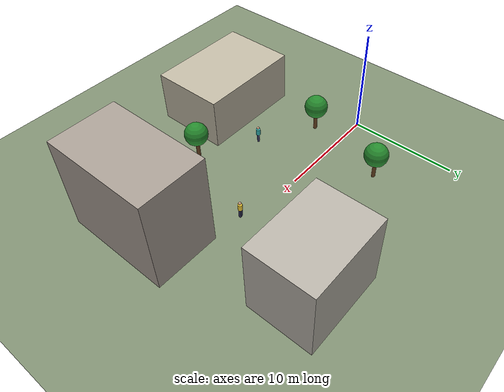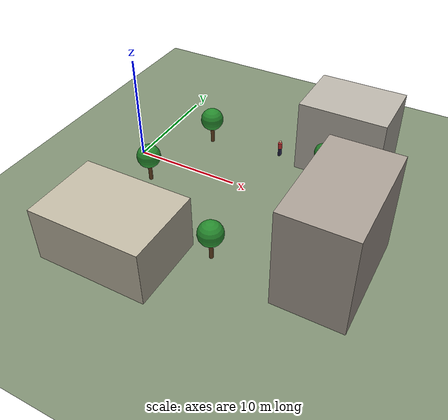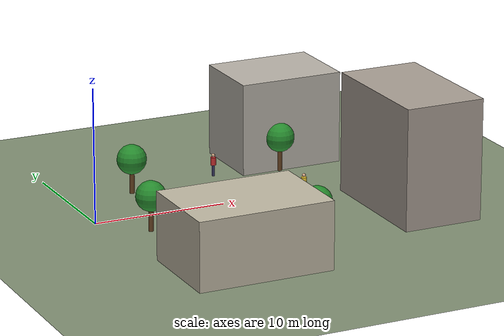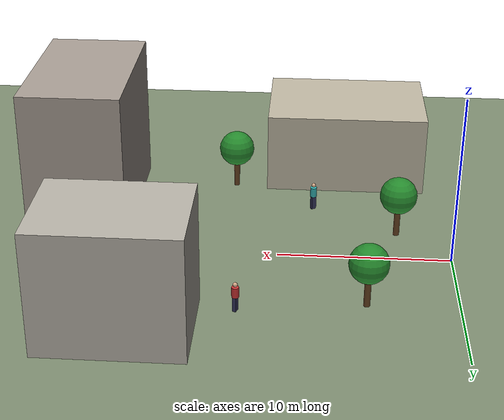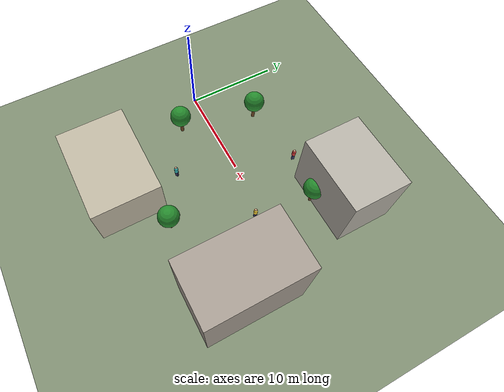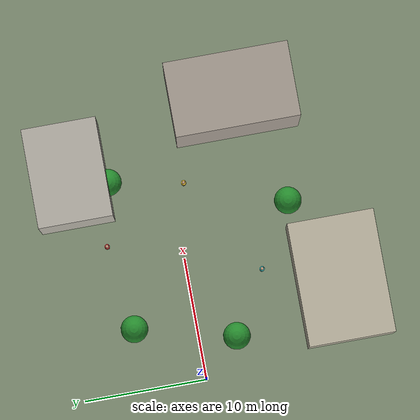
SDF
<sdf version="1.9">
 <world name="plaza-patrol">
  <physics name="1000hz" type="ignored">
   <max_step_size>0.001</max_step_size>
   <real_time_factor>1.0</real_time_factor>
  </physics>
  <plugin filename="gz-sim-physics-system" name="gz::sim::systems::Physics"/>
  <plugin filename="gz-sim-user-commands-system" name="gz::sim::systems::UserCommands"/>
  <plugin filename="gz-sim-scene-broadcaster-system" name="gz::sim::systems::SceneBroadcaster"/>
  <plugin filename="gz-sim-imu-system" name="gz::sim::systems::Imu"/>
  <plugin filename="gz-sim-navsat-system" name="gz::sim::systems::NavSat"/>
  <plugin filename="gz-sim-air-pressure-system" name="gz::sim::systems::AirPressure"/>
  <plugin filename="gz-sim-sensors-system" name="gz::sim::systems::Sensors">
   <render_engine>ogre2</render_engine>
  </plugin>
  <plugin filename="gz-sim-contact-system" name="gz::sim::systems::Contact"/>
  <light name="sun" type="directional">
   <pose>0 0 20 0 0 0</pose>
   <diffuse>1 1 1 1</diffuse>
   <specular>0.4 0.4 0.4 1</specular>
   <direction>-0.4 0.3 -0.9</direction>
  </light>
  <model name="ground_plane">
   <static>true</static>
   <link name="link">
    <collision name="collision">
     <geometry><plane><normal>0 0 1</normal><size>400 400</size></plane></geometry>
    </collision>
    <visual name="visual">
     <geometry><plane><normal>0 0 1</normal><size>400 400</size></plane></geometry>
     <material><ambient>0.45 0.50 0.40 1</ambient><diffuse>0.50 0.56 0.45 1</diffuse></material>
    </visual>
   </link>
  </model>
  <model name="bldg_n">
   <static>true</static>
   <pose>18.0 8.0 3.5 0 0 0</pose>
   <link name="link">
    <collision name="c"><geometry><box><size>8 6 7</size></box></geometry></collision>
    <visual name="v">
     <geometry><box><size>8 6 7</size></box></geometry>
     <material><ambient>0.72 0.70 0.66 1</ambient><diffuse>0.72 0.70 0.66 1</diffuse></material>
    </visual>
   </link>
  </model>
  <model name="bldg_e">
   <static>true</static>
   <pose>22.0 -6.0 4.5 0 0 0</pose>
   <link name="link">
    <collision name="c"><geometry><box><size>6 10 9</size></box></geometry></collision>
    <visual name="v">
     <geometry><box><size>6 10 9</size></box></geometry>
     <material><ambient>0.66 0.62 0.58 1</ambient><diffuse>0.66 0.62 0.58 1</diffuse></material>
    </visual>
   </link>
  </model>
  <model name="bldg_s">
   <static>true</static>
   <pose>6.0 -12.0 2.5 0 0 0</pose>
   <link name="link">
    <collision name="c"><geometry><box><size>10 7 5</size></box></geometry></collision>
    <visual name="v">
     <geometry><box><size>10 7 5</size></box></geometry>
     <material><ambient>0.75 0.72 0.64 1</ambient><diffuse>0.75 0.72 0.64 1</diffuse></material>
    </visual>
   </link>
  </model>
  <model name="tree_0">
   <static>true</static>
   <pose>5.0 5.0 0 0 0 0</pose>
   <link name="link">
    <visual name="trunk">
     <pose>0 0 1.0 0 0 0</pose>
     <geometry><cylinder><radius>0.18</radius><length>2.0</length></cylinder></geometry>
     <material><ambient>0.40 0.26 0.13 1</ambient><diffuse>0.40 0.26 0.13 1</diffuse></material>
    </visual>
    <visual name="canopy">
     <pose>0 0 2.6 0 0 0</pose>
     <geometry><sphere><radius>1.1</radius></sphere></geometry>
     <material><ambient>0.13 0.45 0.16 1</ambient><diffuse>0.15 0.55 0.18 1</diffuse></material>
    </visual>
   </link>
  </model>
  <model name="tree_1">
   <static>true</static>
   <pose>17.0 5.0 0 0 0 0</pose>
   <link name="link">
    <visual name="trunk">
     <pose>0 0 1.0 0 0 0</pose>
     <geometry><cylinder><radius>0.18</radius><length>2.0</length></cylinder></geometry>
     <material><ambient>0.40 0.26 0.13 1</ambient><diffuse>0.40 0.26 0.13 1</diffuse></material>
    </visual>
    <visual name="canopy">
     <pose>0 0 2.6 0 0 0</pose>
     <geometry><sphere><radius>1.1</radius></sphere></geometry>
     <material><ambient>0.13 0.45 0.16 1</ambient><diffuse>0.15 0.55 0.18 1</diffuse></material>
    </visual>
   </link>
  </model>
  <model name="tree_2">
   <static>true</static>
   <pose>13.0 -9.0 0 0 0 0</pose>
   <link name="link">
    <visual name="trunk">
     <pose>0 0 1.0 0 0 0</pose>
     <geometry><cylinder><radius>0.18</radius><length>2.0</length></cylinder></geometry>
     <material><ambient>0.40 0.26 0.13 1</ambient><diffuse>0.40 0.26 0.13 1</diffuse></material>
    </visual>
    <visual name="canopy">
     <pose>0 0 2.6 0 0 0</pose>
     <geometry><sphere><radius>1.1</radius></sphere></geometry>
     <material><ambient>0.13 0.45 0.16 1</ambient><diffuse>0.15 0.55 0.18 1</diffuse></material>
    </visual>
   </link>
  </model>
  <model name="tree_3">
   <static>true</static>
   <pose>3.0 -3.0 0 0 0 0</pose>
   <link name="link">
    <visual name="trunk">
     <pose>0 0 1.0 0 0 0</pose>
     <geometry><cylinder><radius>0.18</radius><length>2.0</length></cylinder></geometry>
     <material><ambient>0.40 0.26 0.13 1</ambient><diffuse>0.40 0.26 0.13 1</diffuse></material>
    </visual>
    <visual name="canopy">
     <pose>0 0 2.6 0 0 0</pose>
     <geometry><sphere><radius>1.1</radius></sphere></geometry>
     <material><ambient>0.13 0.45 0.16 1</ambient><diffuse>0.15 0.55 0.18 1</diffuse></material>
    </visual>
   </link>
  </model>
  <model name="person_0">
   <static>true</static>
   <pose>12.00 6.00 0 0 0 1.20</pose>
   <link name="link">
    <visual name="legs">
     <pose>0 0 0.45 0 0 0</pose>
     <geometry><box><size>0.30 0.20 0.90</size></box></geometry>
     <material><ambient>0.18 0.18 0.30 1</ambient><diffuse>0.20 0.20 0.35 1</diffuse></material>
    </visual>
    <visual name="torso">
     <pose>0 0 1.15 0 0 0</pose>
     <geometry><cylinder><radius>0.20</radius><length>0.60</length></cylinder></geometry>
     <material><ambient>0.80 0.20 0.20 1</ambient><diffuse>0.80 0.20 0.20 1</diffuse></material>
    </visual>
    <visual name="head">
     <pose>0 0 1.60 0 0 0</pose>
     <geometry><sphere><radius>0.13</radius></sphere></geometry>
     <material><ambient>0.85 0.68 0.55 1</ambient><diffuse>0.85 0.68 0.55 1</diffuse></material>
    </visual>
   </link>
  </model>
  <model name="person_1">
   <static>true</static>
   <pose>16.00 -1.00 0 0 0 3.40</pose>
   <link name="link">
    <visual name="legs">
     <pose>0 0 0.45 0 0 0</pose>
     <geometry><box><size>0.30 0.20 0.90</size></box></geometry>
     <material><ambient>0.18 0.18 0.30 1</ambient><diffuse>0.20 0.20 0.35 1</diffuse></material>
    </visual>
    <visual name="torso">
     <pose>0 0 1.15 0 0 0</pose>
     <geometry><cylinder><radius>0.20</radius><length>0.60</length></cylinder></geometry>
     <material><ambient>0.95 0.80 0.20 1</ambient><diffuse>0.95 0.80 0.20 1</diffuse></material>
    </visual>
    <visual name="head">
     <pose>0 0 1.60 0 0 0</pose>
     <geometry><sphere><radius>0.13</radius></sphere></geometry>
     <material><ambient>0.85 0.68 0.55 1</ambient><diffuse>0.85 0.68 0.55 1</diffuse></material>
    </visual>
   </link>
  </model>
  <model name="person_2">
   <static>true</static>
   <pose>8.00 -6.00 0 0 0 0.60</pose>
   <link name="link">
    <visual name="legs">
     <pose>0 0 0.45 0 0 0</pose>
     <geometry><box><size>0.30 0.20 0.90</size></box></geometry>
     <material><ambient>0.18 0.18 0.30 1</ambient><diffuse>0.20 0.20 0.35 1</diffuse></material>
    </visual>
    <visual name="torso">
     <pose>0 0 1.15 0 0 0</pose>
     <geometry><cylinder><radius>0.20</radius><length>0.60</length></cylinder></geometry>
     <material><ambient>0.20 0.70 0.70 1</ambient><diffuse>0.20 0.70 0.70 1</diffuse></material>
    </visual>
    <visual name="head">
     <pose>0 0 1.60 0 0 0</pose>
     <geometry><sphere><radius>0.13</radius></sphere></geometry>
     <material><ambient>0.85 0.68 0.55 1</ambient><diffuse>0.85 0.68 0.55 1</diffuse></material>
    </visual>
   </link>
  </model>
 </world>
</sdf>
